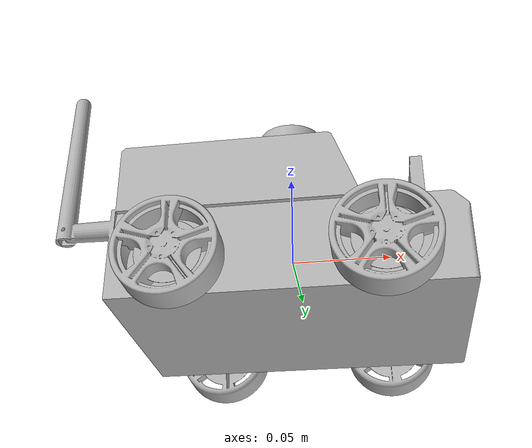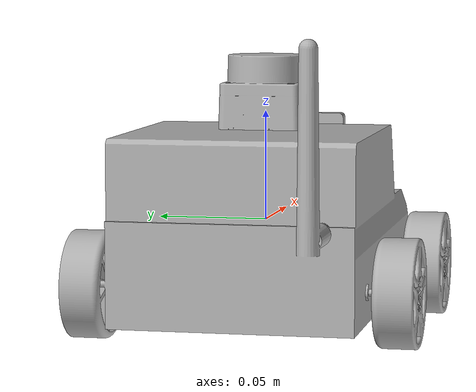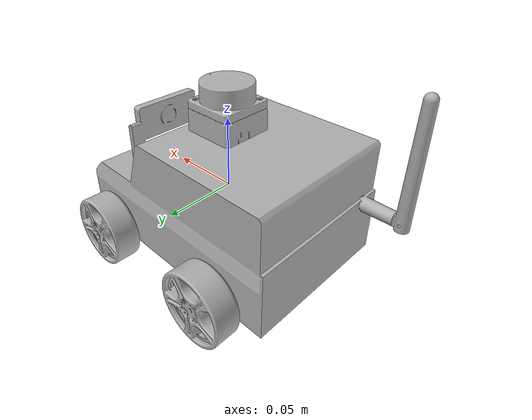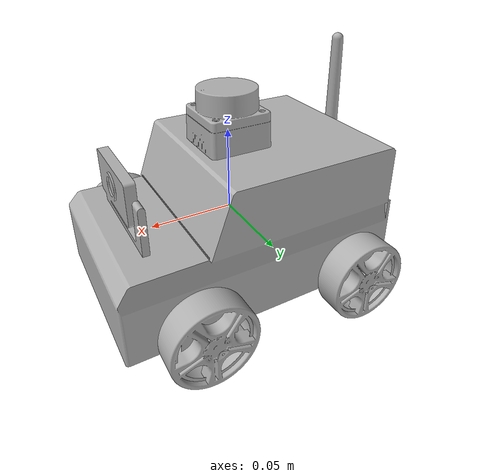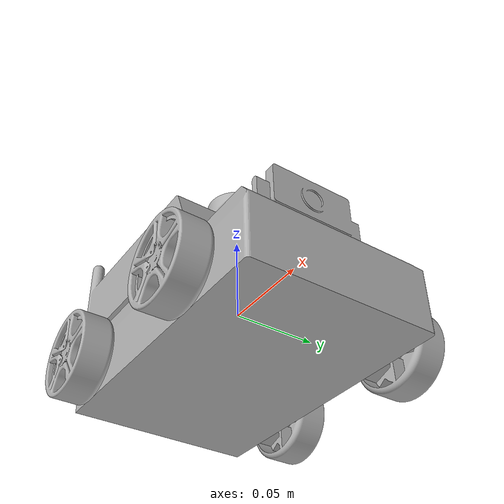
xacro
<?xml version="1.0"?>
<robot name="robot4r" xmlns:xacro="http://www.ros.org/wiki/xacro">

  <!-- Parámetros del modelo (a, l, b del documento de cinemática) -->
  <xacro:property name="rueda_radio" value="0.024"/>
  <xacro:property name="rueda_ancho" value="0.018"/>
  <xacro:property name="l" value="0.0475"/>            <!-- semi-distancia entre ejes -->
  <xacro:property name="b" value="0.0685"/>            <!-- semi-vía -->
  <xacro:property name="z_ruedas" value="-0.024831"/>  <!-- altura de los ejes respecto a base_link -->

  <material name="plata"><color rgba="0.7 0.7 0.7 1"/></material>

  <link name="cad_link">
    <inertial>
      <origin xyz="0.007075542755688884 0.00039268626018340705 -0.002336319439391987" rpy="0 0 0"/>
      <mass value="1.1564709160846736"/>
      <inertia ixx="0.00173" ixy="-2.3e-05" ixz="-0.000306" iyy="0.002971" iyz="-8e-06" izz="0.00348"/>
    </inertial>
    <visual>
      <geometry>
        <mesh filename="package://Modelo_3D_STEP_Corregido_description/meshes/base_link.stl" scale="0.001 0.001 0.001"/>
      </geometry>
      <material name="plata"/>
    </visual>
    <collision>
      <!-- caja del tamaño medido del STL: 0.1986 x 0.137 x 0.126 m -->
      <origin xyz="0.0134 0.0002 0.0239" rpy="0 0 0"/>
      <geometry><box size="0.1986 0.137 0.126"/></geometry>
    </collision>
  </link>

  <!-- base_link: marco ROS (+X adelante, +Y izquierda), sin masa propia. -->
  <link name="base_link"/>

  <!-- cad_link es el marco de SolidWorks, girado 180° respecto a base_link.
       Su +X apunta hacia atrás del robot. -->
  <joint name="base_to_cad_joint" type="fixed">
    <parent link="base_link"/>
    <child link="cad_link"/>
    <origin xyz="0 0 0" rpy="0 0 ${pi}"/>
  </joint>

  <!-- Rueda: x = posición en X, y_signo = -1 izquierda / +1 derecha,
       mesh_y = recentrado de la malla sobre su eje (medido del STL) -->
  <xacro:macro name="rueda" params="nombre x y_signo mesh_y">
    <link name="${nombre}_wheel">
      <inertial>
        <mass value="0.10793382984070173"/>
        <inertia ixx="2.1e-05" ixy="0" ixz="0" iyy="3.7e-05" iyz="0" izz="2.1e-05"/>
      </inertial>
      <visual>
        <origin xyz="${-x} ${mesh_y} ${-z_ruedas}" rpy="0 0 0"/>
        <geometry>
          <mesh filename="package://Modelo_3D_STEP_Corregido_description/meshes/${nombre}_wheel_link_1.stl" scale="0.001 0.001 0.001"/>
        </geometry>
        <material name="plata"/>
      </visual>
      <collision>
        <origin xyz="0 0 0" rpy="${pi/2} 0 0"/>
        <geometry><cylinder radius="${rueda_radio}" length="${rueda_ancho}"/></geometry>
      </collision>
    </link>

    <joint name="${nombre}_wheel_joint" type="continuous">
      <parent link="cad_link"/>
      <child link="${nombre}_wheel"/>
      <origin xyz="${x} ${y_signo * b} ${z_ruedas}" rpy="0 0 0"/>
      <axis xyz="0 -1 0"/>
    </joint>
  </xacro:macro>

  <xacro:rueda nombre="front_left"  x="${-l}" y_signo="-1" mesh_y="0.0673"/>
  <xacro:rueda nombre="rear_left"   x="${l}"  y_signo="-1" mesh_y="0.0673"/>
  <xacro:rueda nombre="front_right" x="${-l}" y_signo="1"  mesh_y="-0.0677"/>
  <xacro:rueda nombre="rear_right"  x="${l}"  y_signo="1"  mesh_y="-0.0677"/>

  <link name="camera_link">
    <inertial>
      <mass value="0.01"/>
      <inertia ixx="1e-05" ixy="0" ixz="0" iyy="1e-05" iyz="0" izz="1e-05"/>
    </inertial>
    <visual>
      <origin xyz="-0.0659 0.0002 -0.0249" rpy="0 0 ${pi}"/>
      <geometry>
        <mesh filename="package://Modelo_3D_STEP_Corregido_description/meshes/Camera_link_1.stl" scale="0.001 0.001 0.001"/>
      </geometry>
      <material name="plata"/>
    </visual>
  </link>
  <joint name="camera_joint" type="fixed">
    <parent link="base_link"/>
    <child link="camera_link"/>
    <origin xyz="0.0659 -0.0002 0.0249" rpy="0 0 0"/>
  </joint>

  <link name="lidar_link">
    <inertial>
      <mass value="0.04"/>
      <inertia ixx="1e-04" ixy="0" ixz="0" iyy="1e-04" iyz="0" izz="1e-04"/>
    </inertial>
    <visual>
      <origin xyz="0 0.0002 -0.0589" rpy="0 0 ${pi}"/>
      <geometry>
        <mesh filename="package://Modelo_3D_STEP_Corregido_description/meshes/Lidar_link_1.stl" scale="0.001 0.001 0.001"/>
      </geometry>
      <material name="plata"/>
    </visual>
  </link>
  <joint name="lidar_joint" type="fixed">
    <parent link="base_link"/>
    <child link="lidar_link"/>
    <origin xyz="0 -0.0002 0.0589" rpy="0 0 0"/>
  </joint>

  <gazebo reference="lidar_link">
    <sensor name="lidar" type="gpu_lidar">
      <topic>scan</topic>
      <gz_frame_id>lidar_link</gz_frame_id>
      <update_rate>10</update_rate>
      <lidar>
        <scan>
          <horizontal>
            <samples>360</samples>
            <min_angle>-3.14159</min_angle>
            <max_angle>3.14159</max_angle>
          </horizontal>
        </scan>
        <range>
          <min>0.1</min>
          <max>10.0</max>
        </range>
      </lidar>
    </sensor>
  </gazebo>

  <gazebo reference="camera_link">
    <sensor name="camara" type="camera">
      <topic>image_raw</topic>
      <gz_frame_id>camera_link</gz_frame_id>
      <update_rate>15</update_rate>
      <camera>
        <horizontal_fov>1.047</horizontal_fov>
        <image><width>320</width><height>240</height></image>
        <clip><near>0.1</near><far>20</far></clip>
      </camera>
    </sensor>
  </gazebo>

  <gazebo>
    <plugin filename="gz-sim-diff-drive-system" name="gz::sim::systems::DiffDrive">
      <left_joint>front_left_wheel_joint</left_joint>
      <left_joint>rear_left_wheel_joint</left_joint>
      <right_joint>front_right_wheel_joint</right_joint>
      <right_joint>rear_right_wheel_joint</right_joint>
      <wheel_separation>${2*b}</wheel_separation>
      <wheel_radius>${rueda_radio}</wheel_radius>
      <odom_publish_frequency>30</odom_publish_frequency>
      <topic>cmd_vel</topic>
      <odom_topic>odom</odom_topic>
      <tf_topic>/tf</tf_topic>
      <frame_id>odom</frame_id>
      <child_frame_id>base_link</child_frame_id>
    </plugin>
    <plugin filename="gz-sim-joint-state-publisher-system" name="gz::sim::systems::JointStatePublisher">
      <topic>joint_states</topic>
    </plugin>
  </gazebo>
</robot>
